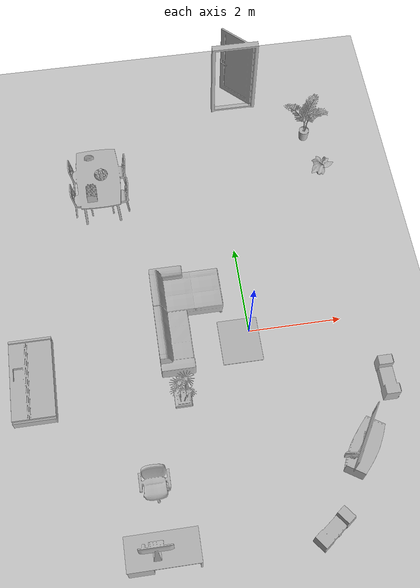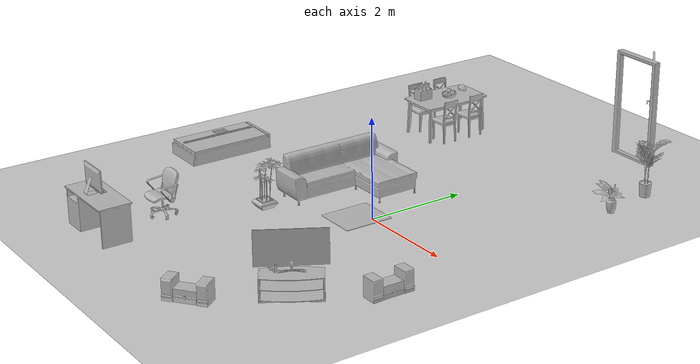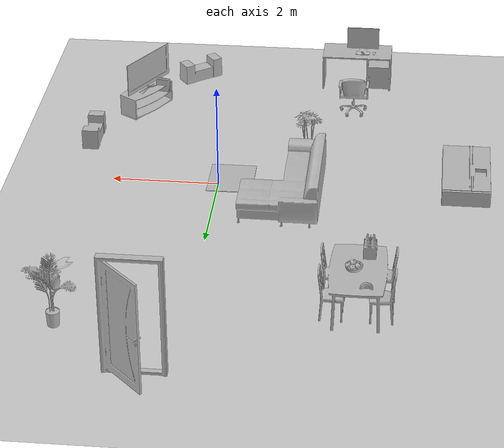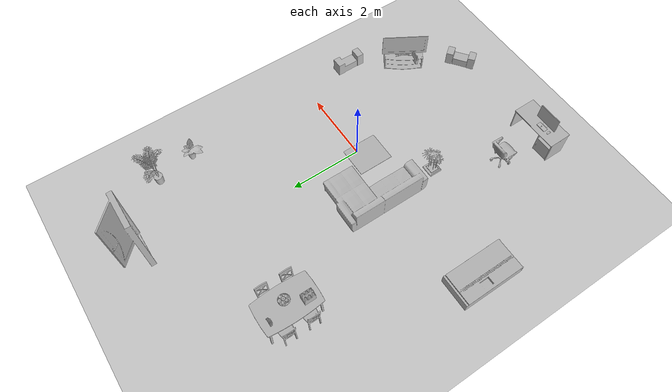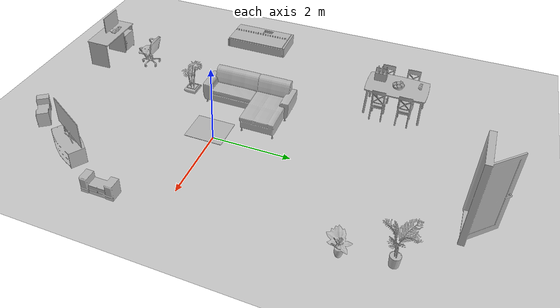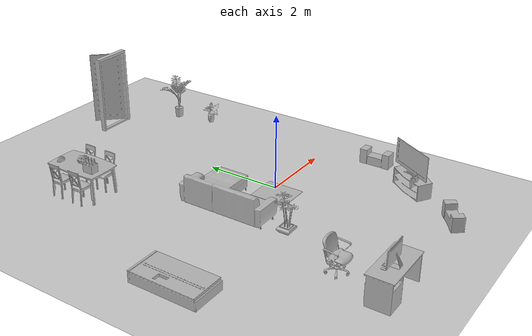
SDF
<sdf version="1.4">
 <world name="default">
  <light name="sun" type="directional">
   <pose>0 0 10 0 -0 0</pose>
   <diffuse>0.8 0.8 0.8 1</diffuse>
   <specular>0.2 0.2 0.2 1</specular>
   <attenuation>
    <range>1000</range>
    <constant>0.9</constant>
    <linear>0.01</linear>
    <quadratic>0.001</quadratic>
   </attenuation>
   <direction>-0.5 0.1 -0.9</direction>
  </light>
  <model name="ground_plane">
   <static>1</static>
   <link name="link">
    <collision name="collision">
     <geometry><plane><normal>0 0 1</normal><size>100 100</size></plane></geometry>
     <surface><friction><ode><mu>100</mu><mu2>50</mu2></ode></friction></surface>
    </collision>
    <visual name="visual">
     <cast_shadows>0</cast_shadows>
     <geometry><plane><normal>0 0 1</normal><size>100 100</size></plane></geometry>
     <material>
      <script><uri>file://media/materials/scripts/gazebo.material</uri><name>Gazebo/Grey</name></script>
     </material>
    </visual>
    <velocity_decay><linear>0</linear><angular>0</angular></velocity_decay>
   </link>
  </model>
  <physics type="ode">
   <max_step_size>0.001</max_step_size>
   <real_time_factor>1</real_time_factor>
   <real_time_update_rate>1000</real_time_update_rate>
   <gravity>0 0 -9.8</gravity>
  </physics>
  <scene><ambient>0.4 0.4 0.4 1</ambient><background>0.7 0.7 0.7 1</background><shadows>1</shadows></scene>
  <spherical_coordinates>
   <surface_model>EARTH_WGS84</surface_model>
   <latitude_deg>0</latitude_deg>
   <longitude_deg>0</longitude_deg>
   <elevation>0</elevation>
   <heading_deg>0</heading_deg>
  </spherical_coordinates>
  <model name="153_0">
   <pose>-0.232002 -0.19534 0.01 0 -0 0</pose>
   <static>1</static>
   <link name="link">
    <collision name="collision"><geometry><box><size>0.86 1 0</size></box></geometry></collision>
    <visual name="visual"><geometry><mesh><uri>model://153/153.dae</uri></mesh></geometry></visual>
    <velocity_decay><linear>0</linear><angular>0</angular></velocity_decay>
   </link>
  </model>
  <model name="168_0">
   <pose>-1.23429 0.317295 0.01 0 -0 0</pose>
   <static>1</static>
   <link name="link">
    <collision name="collision"><geometry><box><size>1.49 2.38031 2</size></box></geometry></collision>
    <visual name="visual"><geometry><mesh><uri>model://168/168.dae</uri></mesh></geometry></visual>
    <velocity_decay><linear>0</linear><angular>0</angular></velocity_decay>
   </link>
  </model>
  <model name="114_0">
   <pose>1.76936 -2.86671 0.448594 0 0 -0.532351</pose>
   <static>1</static>
   <link name="link">
    <collision name="collision"><geometry><box><size>0.09995 1.28 2</size></box></geometry></collision>
    <visual name="visual"><geometry><mesh><uri>model://114/114.dae</uri></mesh></geometry></visual>
    <velocity_decay><linear>0</linear><angular>0</angular></velocity_decay>
   </link>
  </model>
  <model name="134_0">
   <pose>-2.83 3.86778 0.01 0 -0 0</pose>
   <static>1</static>
   <link name="link">
    <collision name="collision"><geometry><box><size>1.31043 1.55 2</size></box></geometry></collision>
    <visual name="visual"><geometry><mesh><uri>model://134/134.dae</uri></mesh></geometry></visual>
    <velocity_decay><linear>0</linear><angular>0</angular></velocity_decay>
   </link>
  </model>
  <model name="131_0">
   <pose>-4.64935 -1.42949 0.01 0 -0 0</pose>
   <static>1</static>
   <link name="link">
    <collision name="collision"><geometry><box><size>0.62087 0.9 2</size></box></geometry></collision>
    <visual name="visual"><geometry><mesh><uri>model://131/131.dae</uri></mesh></geometry></visual>
    <velocity_decay><linear>0</linear><angular>0</angular></velocity_decay>
   </link>
  </model>
  <model name="218_0">
   <pose>2.64845 -1.51071 0.001362 0 -0 0</pose>
   <static>1</static>
   <link name="link">
    <collision name="collision"><geometry><box><size>0.318 0.84 2</size></box></geometry></collision>
    <visual name="visual"><geometry><mesh><uri>model://218/218.dae</uri></mesh></geometry></visual>
    <velocity_decay><linear>0</linear><angular>0</angular></velocity_decay>
   </link>
  </model>
  <model name="218_1">
   <pose>0.901371 -4.35858 0.004837 0 0 -0.924442</pose>
   <static>1</static>
   <link name="link">
    <collision name="collision"><geometry><box><size>0.318 0.84 2</size></box></geometry></collision>
    <visual name="visual"><geometry><mesh><uri>model://218/218.dae</uri></mesh></geometry></visual>
    <velocity_decay><linear>0</linear><angular>0</angular></velocity_decay>
   </link>
  </model>
  <model name="198_0">
   <pose>1.81734 -2.90271 0.01 0 0 -0.579252</pose>
   <static>1</static>
   <link name="link">
    <collision name="collision"><geometry><box><size>0.533104 1.11 2</size></box></geometry></collision>
    <visual name="visual"><geometry><mesh><uri>model://198/198.dae</uri></mesh></geometry></visual>
    <velocity_decay><linear>0</linear><angular>0</angular></velocity_decay>
   </link>
  </model>
  <model name="345_0">
   <pose>1.50541 -3.04071 0.46 0 -0 2.9627</pose>
   <static>1</static>
   <link name="link">
    <collision name="collision"><geometry><box><size>0.289994 0.289948 2</size></box></geometry></collision>
    <visual name="visual"><geometry><mesh><uri>model://345/345.dae</uri></mesh></geometry></visual>
    <velocity_decay><linear>0</linear><angular>0</angular></velocity_decay>
   </link>
  </model>
  <model name="130_0">
   <pose>2.34525 3.7933 0.01 0 -0 0</pose>
   <static>1</static>
   <link name="link">
    <collision name="collision"><geometry><box><size>0.51716 0.566834 2</size></box></geometry></collision>
    <visual name="visual"><geometry><mesh><uri>model://130/130.dae</uri></mesh></geometry></visual>
    <velocity_decay><linear>0</linear><angular>0</angular></velocity_decay>
   </link>
  </model>
  <model name="624_0">
   <pose>-1.60143 -1.30156 0.01 0 -0 0</pose>
   <static>1</static>
   <link name="link">
    <collision name="collision"><geometry><box><size>0.539563 0.590072 2</size></box></geometry></collision>
    <visual name="visual"><geometry><mesh><uri>model://624/624.dae</uri></mesh></geometry></visual>
    <velocity_decay><linear>0</linear><angular>0</angular></velocity_decay>
   </link>
  </model>
  <model name="620_0">
   <pose>2.15279 4.85493 0.01 0 -0 0</pose>
   <static>1</static>
   <link name="link">
    <collision name="collision"><geometry><box><size>0.999657 0.770188 2</size></box></geometry></collision>
    <visual name="visual"><geometry><mesh><uri>model://620/620.dae</uri></mesh></geometry></visual>
    <velocity_decay><linear>0</linear><angular>0</angular></velocity_decay>
   </link>
  </model>
  <model name="678_0">
   <pose>-2.75701 3.89435 0.770812 0 -0 0</pose>
   <static>1</static>
   <link name="link">
    <collision name="collision"><geometry><box><size>0.299858 0.299858 2</size></box></geometry></collision>
    <visual name="visual"><geometry><mesh><uri>model://678/678.dae</uri></mesh></geometry></visual>
    <velocity_decay><linear>0</linear><angular>0</angular></velocity_decay>
   </link>
  </model>
  <model name="530_0">
   <pose>-2.9932 4.36824 0.770772 0 -0 0</pose>
   <static>1</static>
   <link name="link">
    <collision name="collision"><geometry><box><size>0.219994 0.219994 2</size></box></geometry></collision>
    <visual name="visual"><geometry><mesh><uri>model://530/530.dae</uri></mesh></geometry></visual>
    <velocity_decay><linear>0</linear><angular>0</angular></velocity_decay>
   </link>
  </model>
  <model name="265_0">
   <pose>-3.00299 3.4015 0.772803 0 -0 0</pose>
   <static>1</static>
   <link name="link">
    <collision name="collision"><geometry><box><size>0.21878 0.298764 2</size></box></geometry></collision>
    <visual name="visual"><geometry><mesh><uri>model://265/265.dae</uri></mesh></geometry></visual>
    <velocity_decay><linear>0</linear><angular>0</angular></velocity_decay>
   </link>
  </model>
  <model name="761_0">
   <pose>0.604898 6.00465 0 0 0 -1.57372</pose>
   <static>1</static>
   <link name="link">
    <collision name="collision"><geometry><box><size>0.73 1.06 2</size></box></geometry></collision>
    <visual name="visual"><geometry><mesh><uri>model://761/761.dae</uri></mesh></geometry></visual>
    <velocity_decay><linear>0</linear><angular>0</angular></velocity_decay>
   </link>
  </model>
  <model name="108_0">
   <pose>-2.38265 -4.35471 0.01 0 -0 1.5708</pose>
   <static>1</static>
   <link name="link">
    <collision name="collision"><geometry><box><size>0.66 1.4 2</size></box></geometry></collision>
    <visual name="visual"><geometry><mesh><uri>model://108/108.dae</uri></mesh></geometry></visual>
    <velocity_decay><linear>0</linear><angular>0</angular></velocity_decay>
   </link>
  </model>
  <model name="677_0">
   <pose>-2.38265 -3.08032 0.01 0 0 -1.5708</pose>
   <static>1</static>
   <link name="link">
    <collision name="collision"><geometry><box><size>0.578003 0.599482 2</size></box></geometry></collision>
    <visual name="visual"><geometry><mesh><uri>model://677/677.dae</uri></mesh></geometry></visual>
    <velocity_decay><linear>0</linear><angular>0</angular></velocity_decay>
   </link>
  </model>
  <model name="189_0">
   <pose>-2.49065 -4.3667 0.762224 0 -0 1.5708</pose>
   <static>1</static>
   <link name="link">
    <collision name="collision"><geometry><box><size>0.359507 0.6495 2</size></box></geometry></collision>
    <visual name="visual"><geometry><mesh><uri>model://189/189.dae</uri></mesh></geometry></visual>
    <velocity_decay><linear>0</linear><angular>0</angular></velocity_decay>
   </link>
  </model>
 </world>
</sdf>
